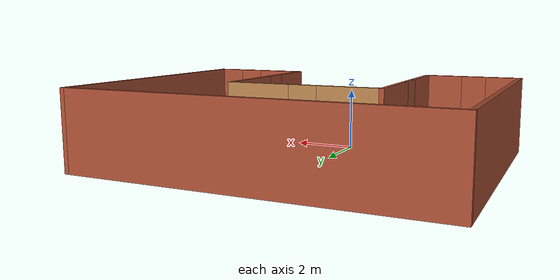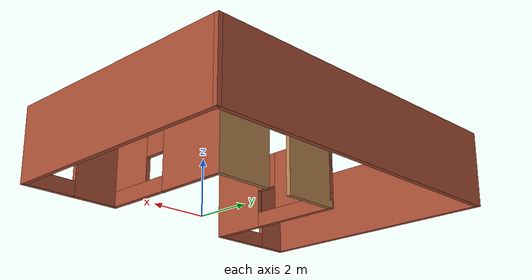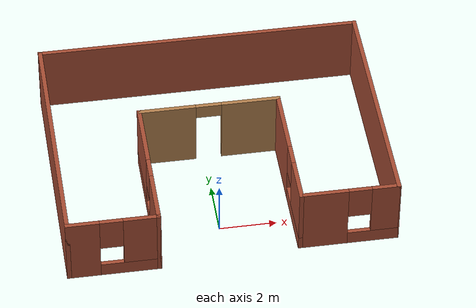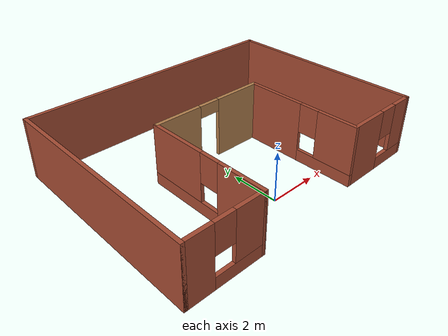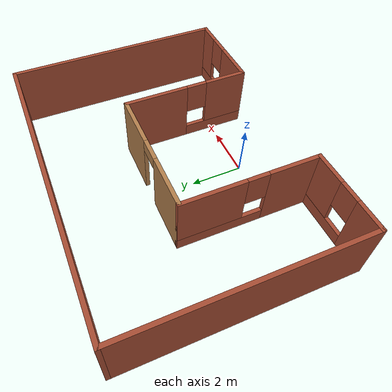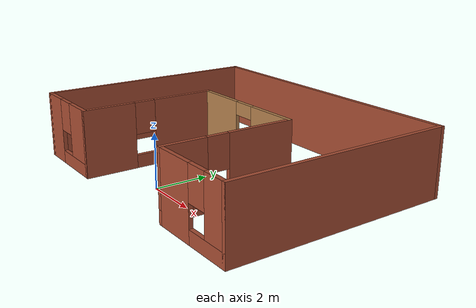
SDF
<?xml version='1.0'?>
<sdf version='1.6'>
  <model name='my_building_0'>
    <pose frame=''>0.295 2.82 0 0 -0 0</pose>
    <link name='Wall_13'>
      <pose frame=''>2.325 -1.625 0 0 0 -1.5708</pose>
      <visual name='Wall_13_Visual_0'>
        <pose frame=''>-1.23537 0 1.25 0 -0 0</pose>
        <geometry>
          <box>
            <size>2.52925 0.15 2.5</size>
          </box>
        </geometry>
        <material>
          <script>
            <uri>file://media/materials/scripts/gazebo.material</uri>
            <name>Gazebo/Bricks</name>
          </script>
          <ambient>1 1 1 1</ambient>
        </material>
        <meta>
          <layer>0</layer>
        </meta>
      </visual>
      <collision name='Wall_13_Collision_0'>
        <geometry>
          <box>
            <size>2.52925 0.15 2.5</size>
          </box>
        </geometry>
        <pose frame=''>-1.23537 0 1.25 0 -0 0</pose>
      </collision>
      <visual name='Wall_13_Visual_1'>
        <pose frame=''>1.26463 0 0.25 0 -0 0</pose>
        <geometry>
          <box>
            <size>2.47075 0.15 0.5</size>
          </box>
        </geometry>
        <material>
          <script>
            <uri>file://media/materials/scripts/gazebo.material</uri>
            <name>Gazebo/Bricks</name>
          </script>
          <ambient>1 1 1 1</ambient>
        </material>
        <meta>
          <layer>0</layer>
        </meta>
      </visual>
      <collision name='Wall_13_Collision_1'>
        <geometry>
          <box>
            <size>2.47075 0.15 0.5</size>
          </box>
        </geometry>
        <pose frame=''>1.26463 0 0.25 0 -0 0</pose>
      </collision>
      <visual name='Wall_13_Visual_2'>
        <pose frame=''>1.66463 0 1.5 0 -0 0</pose>
        <geometry>
          <box>
            <size>1.67075 0.15 2</size>
          </box>
        </geometry>
        <material>
          <script>
            <uri>file://media/materials/scripts/gazebo.material</uri>
            <name>Gazebo/Bricks</name>
          </script>
          <ambient>1 1 1 1</ambient>
        </material>
        <meta>
          <layer>0</layer>
        </meta>
      </visual>
      <collision name='Wall_13_Collision_2'>
        <geometry>
          <box>
            <size>1.67075 0.15 2</size>
          </box>
        </geometry>
        <pose frame=''>1.66463 0 1.5 0 -0 0</pose>
      </collision>
      <visual name='Wall_13_Visual_3'>
        <pose frame=''>0.42925 0 1.9 0 -0 0</pose>
        <geometry>
          <box>
            <size>0.8 0.15 1.2</size>
          </box>
        </geometry>
        <material>
          <script>
            <uri>file://media/materials/scripts/gazebo.material</uri>
            <name>Gazebo/Bricks</name>
          </script>
          <ambient>1 1 1 1</ambient>
        </material>
        <meta>
          <layer>0</layer>
        </meta>
      </visual>
      <collision name='Wall_13_Collision_3'>
        <geometry>
          <box>
            <size>0.8 0.15 1.2</size>
          </box>
        </geometry>
        <pose frame=''>0.42925 0 1.9 0 -0 0</pose>
      </collision>
    </link>
    <link name='Wall_14'>
      <pose frame=''>4 -4.05 0 0 -0 0</pose>
      <visual name='Wall_14_Visual_0'>
        <pose frame=''>-0.898791 0 1.25 0 -0 0</pose>
        <geometry>
          <box>
            <size>1.70242 0.15 2.5</size>
          </box>
        </geometry>
        <material>
          <script>
            <uri>file://media/materials/scripts/gazebo.material</uri>
            <name>Gazebo/Bricks</name>
          </script>
          <ambient>1 1 1 1</ambient>
        </material>
        <meta>
          <layer>0</layer>
        </meta>
      </visual>
      <collision name='Wall_14_Collision_0'>
        <geometry>
          <box>
            <size>1.70242 0.15 2.5</size>
          </box>
        </geometry>
        <pose frame=''>-0.898791 0 1.25 0 -0 0</pose>
      </collision>
      <visual name='Wall_14_Visual_1'>
        <pose frame=''>0.851209 0 0.25 0 -0 0</pose>
        <geometry>
          <box>
            <size>1.79758 0.15 0.5</size>
          </box>
        </geometry>
        <material>
          <script>
            <uri>file://media/materials/scripts/gazebo.material</uri>
            <name>Gazebo/Bricks</name>
          </script>
          <ambient>1 1 1 1</ambient>
        </material>
        <meta>
          <layer>0</layer>
        </meta>
      </visual>
      <collision name='Wall_14_Collision_1'>
        <geometry>
          <box>
            <size>1.79758 0.15 0.5</size>
          </box>
        </geometry>
        <pose frame=''>0.851209 0 0.25 0 -0 0</pose>
      </collision>
      <visual name='Wall_14_Visual_2'>
        <pose frame=''>1.25121 0 1.5 0 -0 0</pose>
        <geometry>
          <box>
            <size>0.997581 0.15 2</size>
          </box>
        </geometry>
        <material>
          <script>
            <uri>file://media/materials/scripts/gazebo.material</uri>
            <name>Gazebo/Bricks</name>
          </script>
          <ambient>1 1 1 1</ambient>
        </material>
        <meta>
          <layer>0</layer>
        </meta>
      </visual>
      <collision name='Wall_14_Collision_2'>
        <geometry>
          <box>
            <size>0.997581 0.15 2</size>
          </box>
        </geometry>
        <pose frame=''>1.25121 0 1.5 0 -0 0</pose>
      </collision>
      <visual name='Wall_14_Visual_3'>
        <pose frame=''>0.352419 0 1.9 0 -0 0</pose>
        <geometry>
          <box>
            <size>0.8 0.15 1.2</size>
          </box>
        </geometry>
        <material>
          <script>
            <uri>file://media/materials/scripts/gazebo.material</uri>
            <name>Gazebo/Bricks</name>
          </script>
          <ambient>1 1 1 1</ambient>
        </material>
        <meta>
          <layer>0</layer>
        </meta>
      </visual>
      <collision name='Wall_14_Collision_3'>
        <geometry>
          <box>
            <size>0.8 0.15 1.2</size>
          </box>
        </geometry>
        <pose frame=''>0.352419 0 1.9 0 -0 0</pose>
      </collision>
    </link>
    <link name='Wall_16'>
      <collision name='Wall_16_Collision'>
        <geometry>
          <box>
            <size>8.5 0.15 2.5</size>
          </box>
        </geometry>
        <pose frame=''>0 0 1.25 0 -0 0</pose>
      </collision>
      <visual name='Wall_16_Visual'>
        <pose frame=''>0 0 1.25 0 -0 0</pose>
        <geometry>
          <box>
            <size>8.5 0.15 2.5</size>
          </box>
        </geometry>
        <material>
          <script>
            <uri>file://media/materials/scripts/gazebo.material</uri>
            <name>Gazebo/Bricks</name>
          </script>
          <ambient>0.333333 0.333333 1 1</ambient>
        </material>
        <meta>
          <layer>0</layer>
        </meta>
      </visual>
      <pose frame=''>5.675 0.125 0 0 -0 1.5708</pose>
    </link>
    <link name='Wall_17'>
      <collision name='Wall_17_Collision'>
        <geometry>
          <box>
            <size>11.5 0.15 2.5</size>
          </box>
        </geometry>
        <pose frame=''>0 0 1.25 0 -0 0</pose>
      </collision>
      <visual name='Wall_17_Visual'>
        <pose frame=''>0 0 1.25 0 -0 0</pose>
        <geometry>
          <box>
            <size>11.5 0.15 2.5</size>
          </box>
        </geometry>
        <material>
          <script>
            <uri>file://media/materials/scripts/gazebo.material</uri>
            <name>Gazebo/Bricks</name>
          </script>
          <ambient>0.333333 0.333333 1 1</ambient>
        </material>
        <meta>
          <layer>0</layer>
        </meta>
      </visual>
      <pose frame=''>0 4.3 0 0 -0 3.14159</pose>
    </link>
    <link name='Wall_18'>
      <collision name='Wall_18_Collision'>
        <geometry>
          <box>
            <size>8.75 0.15 2.5</size>
          </box>
        </geometry>
        <pose frame=''>0 0 1.25 0 -0 0</pose>
      </collision>
      <visual name='Wall_18_Visual'>
        <pose frame=''>0 0 1.25 0 -0 0</pose>
        <geometry>
          <box>
            <size>8.75 0.15 2.5</size>
          </box>
        </geometry>
        <material>
          <script>
            <uri>file://media/materials/scripts/gazebo.material</uri>
            <name>Gazebo/Bricks</name>
          </script>
          <ambient>0.333333 0.333333 1 1</ambient>
        </material>
        <meta>
          <layer>0</layer>
        </meta>
      </visual>
      <pose frame=''>-5.675 0 0 0 0 -1.5708</pose>
    </link>
    <link name='Wall_19'>
      <pose frame=''>-4.125 -4.3 0 0 -0 0</pose>
      <visual name='Wall_19_Visual_0'>
        <pose frame=''>-1.04185 0 1.25 0 -0 0</pose>
        <geometry>
          <box>
            <size>1.16629 0.15 2.5</size>
          </box>
        </geometry>
        <material>
          <script>
            <uri>file://media/materials/scripts/gazebo.material</uri>
            <name>Gazebo/Bricks</name>
          </script>
          <ambient>1 1 1 1</ambient>
        </material>
        <meta>
          <layer>0</layer>
        </meta>
      </visual>
      <collision name='Wall_19_Collision_0'>
        <geometry>
          <box>
            <size>1.16629 0.15 2.5</size>
          </box>
        </geometry>
        <pose frame=''>-1.04185 0 1.25 0 -0 0</pose>
      </collision>
      <visual name='Wall_19_Visual_1'>
        <pose frame=''>0.583146 0 0.25 0 -0 0</pose>
        <geometry>
          <box>
            <size>2.08371 0.15 0.5</size>
          </box>
        </geometry>
        <material>
          <script>
            <uri>file://media/materials/scripts/gazebo.material</uri>
            <name>Gazebo/Bricks</name>
          </script>
          <ambient>1 1 1 1</ambient>
        </material>
        <meta>
          <layer>0</layer>
        </meta>
      </visual>
      <collision name='Wall_19_Collision_1'>
        <geometry>
          <box>
            <size>2.08371 0.15 0.5</size>
          </box>
        </geometry>
        <pose frame=''>0.583146 0 0.25 0 -0 0</pose>
      </collision>
      <visual name='Wall_19_Visual_2'>
        <pose frame=''>0.983146 0 1.5 0 -0 0</pose>
        <geometry>
          <box>
            <size>1.28371 0.15 2</size>
          </box>
        </geometry>
        <material>
          <script>
            <uri>file://media/materials/scripts/gazebo.material</uri>
            <name>Gazebo/Bricks</name>
          </script>
          <ambient>1 1 1 1</ambient>
        </material>
        <meta>
          <layer>0</layer>
        </meta>
      </visual>
      <collision name='Wall_19_Collision_2'>
        <geometry>
          <box>
            <size>1.28371 0.15 2</size>
          </box>
        </geometry>
        <pose frame=''>0.983146 0 1.5 0 -0 0</pose>
      </collision>
      <visual name='Wall_19_Visual_3'>
        <pose frame=''>-0.058708 0 1.9 0 -0 0</pose>
        <geometry>
          <box>
            <size>0.8 0.15 1.2</size>
          </box>
        </geometry>
        <material>
          <script>
            <uri>file://media/materials/scripts/gazebo.material</uri>
            <name>Gazebo/Bricks</name>
          </script>
          <ambient>1 1 1 1</ambient>
        </material>
        <meta>
          <layer>0</layer>
        </meta>
      </visual>
      <collision name='Wall_19_Collision_3'>
        <geometry>
          <box>
            <size>0.8 0.15 1.2</size>
          </box>
        </geometry>
        <pose frame=''>-0.058708 0 1.9 0 -0 0</pose>
      </collision>
    </link>
    <link name='Wall_2'>
      <pose frame=''>-0.1 0.8 0 0 -0 0</pose>
      <visual name='Wall_2_Visual_0'>
        <pose frame=''>-1.49408 0 1.25 0 -0 0</pose>
        <geometry>
          <box>
            <size>2.01185 0.15 2.5</size>
          </box>
        </geometry>
        <material>
          <script>
            <uri>file://media/materials/scripts/gazebo.material</uri>
            <name>Gazebo/Wood</name>
          </script>
          <ambient>1 1 1 1</ambient>
        </material>
        <meta>
          <layer>0</layer>
        </meta>
      </visual>
      <collision name='Wall_2_Collision_0'>
        <geometry>
          <box>
            <size>2.01185 0.15 2.5</size>
          </box>
        </geometry>
        <pose frame=''>-1.49408 0 1.25 0 -0 0</pose>
      </collision>
      <visual name='Wall_2_Visual_1'>
        <pose frame=''>1.45592 0 1.25 0 -0 0</pose>
        <geometry>
          <box>
            <size>2.08815 0.15 2.5</size>
          </box>
        </geometry>
        <material>
          <script>
            <uri>file://media/materials/scripts/gazebo.material</uri>
            <name>Gazebo/Wood</name>
          </script>
          <ambient>1 1 1 1</ambient>
        </material>
        <meta>
          <layer>0</layer>
        </meta>
      </visual>
      <collision name='Wall_2_Collision_1'>
        <geometry>
          <box>
            <size>2.08815 0.15 2.5</size>
          </box>
        </geometry>
        <pose frame=''>1.45592 0 1.25 0 -0 0</pose>
      </collision>
      <visual name='Wall_2_Visual_2'>
        <pose frame=''>-0.03815 0 2.25 0 -0 0</pose>
        <geometry>
          <box>
            <size>0.9 0.15 0.5</size>
          </box>
        </geometry>
        <material>
          <script>
            <uri>file://media/materials/scripts/gazebo.material</uri>
            <name>Gazebo/Wood</name>
          </script>
          <ambient>1 1 1 1</ambient>
        </material>
        <meta>
          <layer>0</layer>
        </meta>
      </visual>
      <collision name='Wall_2_Collision_2'>
        <geometry>
          <box>
            <size>0.9 0.15 0.5</size>
          </box>
        </geometry>
        <pose frame=''>-0.03815 0 2.25 0 -0 0</pose>
      </collision>
    </link>
    <link name='Wall_20'>
      <pose frame=''>-2.575 -1.75 0 0 -0 1.5708</pose>
      <visual name='Wall_20_Visual_0'>
        <pose frame=''>-1.62417 0 1.25 0 -0 0</pose>
        <geometry>
          <box>
            <size>2.00166 0.15 2.5</size>
          </box>
        </geometry>
        <material>
          <script>
            <uri>file://media/materials/scripts/gazebo.material</uri>
            <name>Gazebo/Bricks</name>
          </script>
          <ambient>1 1 1 1</ambient>
        </material>
        <meta>
          <layer>0</layer>
        </meta>
      </visual>
      <collision name='Wall_20_Collision_0'>
        <geometry>
          <box>
            <size>2.00166 0.15 2.5</size>
          </box>
        </geometry>
        <pose frame=''>-1.62417 0 1.25 0 -0 0</pose>
      </collision>
      <visual name='Wall_20_Visual_1'>
        <pose frame=''>1.00083 0 0.25 0 -0 0</pose>
        <geometry>
          <box>
            <size>3.24834 0.15 0.5</size>
          </box>
        </geometry>
        <material>
          <script>
            <uri>file://media/materials/scripts/gazebo.material</uri>
            <name>Gazebo/Bricks</name>
          </script>
          <ambient>1 1 1 1</ambient>
        </material>
        <meta>
          <layer>0</layer>
        </meta>
      </visual>
      <collision name='Wall_20_Collision_1'>
        <geometry>
          <box>
            <size>3.24834 0.15 0.5</size>
          </box>
        </geometry>
        <pose frame=''>1.00083 0 0.25 0 -0 0</pose>
      </collision>
      <visual name='Wall_20_Visual_2'>
        <pose frame=''>1.40083 0 1.5 0 -0 0</pose>
        <geometry>
          <box>
            <size>2.44834 0.15 2</size>
          </box>
        </geometry>
        <material>
          <script>
            <uri>file://media/materials/scripts/gazebo.material</uri>
            <name>Gazebo/Bricks</name>
          </script>
          <ambient>1 1 1 1</ambient>
        </material>
        <meta>
          <layer>0</layer>
        </meta>
      </visual>
      <collision name='Wall_20_Collision_2'>
        <geometry>
          <box>
            <size>2.44834 0.15 2</size>
          </box>
        </geometry>
        <pose frame=''>1.40083 0 1.5 0 -0 0</pose>
      </collision>
      <visual name='Wall_20_Visual_3'>
        <pose frame=''>-0.223339 0 1.9 0 -0 0</pose>
        <geometry>
          <box>
            <size>0.8 0.15 1.2</size>
          </box>
        </geometry>
        <material>
          <script>
            <uri>file://media/materials/scripts/gazebo.material</uri>
            <name>Gazebo/Bricks</name>
          </script>
          <ambient>1 1 1 1</ambient>
        </material>
        <meta>
          <layer>0</layer>
        </meta>
      </visual>
      <collision name='Wall_20_Collision_3'>
        <geometry>
          <box>
            <size>0.8 0.15 1.2</size>
          </box>
        </geometry>
        <pose frame=''>-0.223339 0 1.9 0 -0 0</pose>
      </collision>
    </link>
    <static>1</static>
  </model>
</sdf>
